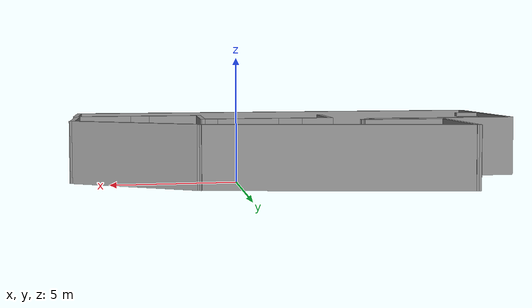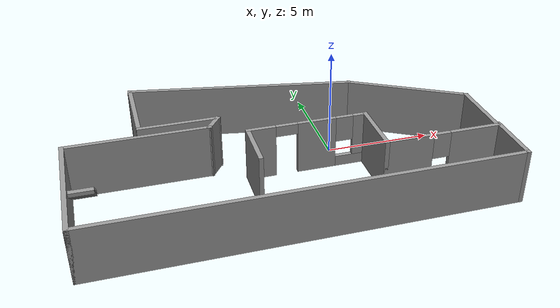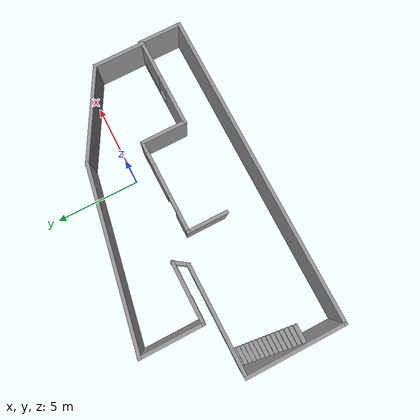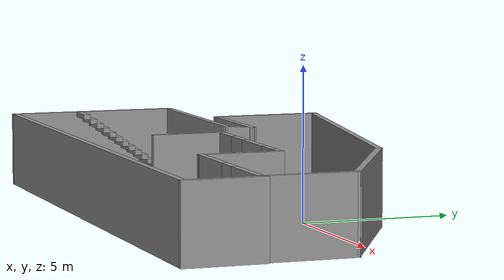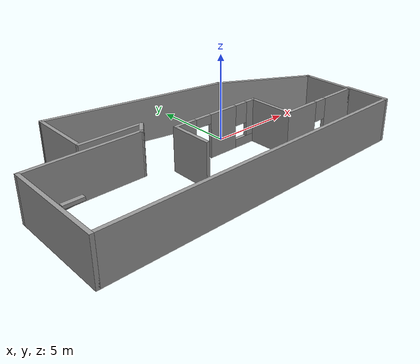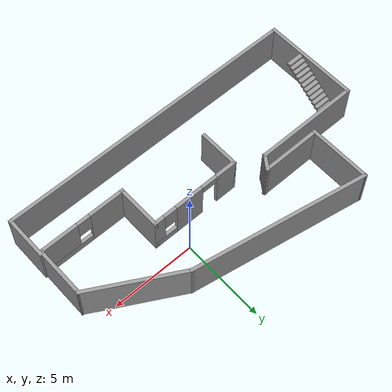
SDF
<?xml version='1.0'?>
<sdf version='1.4'>
  <model name='stupid_wall_ready_to_delete'>
    <link name='Stairs_0'>
      <visual name='Stairs_0_Visual_0'>
        <pose>-11.3254 -0.608508 0.083333 0 -0 0</pose>
        <geometry>
          <box>
            <size>1 0.233335 0.166668</size>
          </box>
        </geometry>
        <material>
          <script>
            <uri>file://media/materials/scripts/gazebo.material</uri>
            <name>Gazebo/Grey</name>
          </script>
        </material>
      </visual>
      <collision name='Stairs_0_Collision_0'>
        <geometry>
          <box>
            <size>1 0.233335 0.166668</size>
          </box>
        </geometry>
        <pose>-11.3254 -0.608508 0.083333 0 -0 0</pose>
      </collision>
      <visual name='Stairs_0_Visual_1'>
        <pose>-11.3254 -0.841841 0.25 0 -0 0</pose>
        <geometry>
          <box>
            <size>1 0.233335 0.166668</size>
          </box>
        </geometry>
        <material>
          <script>
            <uri>file://media/materials/scripts/gazebo.material</uri>
            <name>Gazebo/Grey</name>
          </script>
        </material>
      </visual>
      <collision name='Stairs_0_Collision_1'>
        <geometry>
          <box>
            <size>1 0.233335 0.166668</size>
          </box>
        </geometry>
        <pose>-11.3254 -0.841841 0.25 0 -0 0</pose>
      </collision>
      <visual name='Stairs_0_Visual_2'>
        <pose>-11.3254 -1.07517 0.416667 0 -0 0</pose>
        <geometry>
          <box>
            <size>1 0.233335 0.166668</size>
          </box>
        </geometry>
        <material>
          <script>
            <uri>file://media/materials/scripts/gazebo.material</uri>
            <name>Gazebo/Grey</name>
          </script>
        </material>
      </visual>
      <collision name='Stairs_0_Collision_2'>
        <geometry>
          <box>
            <size>1 0.233335 0.166668</size>
          </box>
        </geometry>
        <pose>-11.3254 -1.07517 0.416667 0 -0 0</pose>
      </collision>
      <visual name='Stairs_0_Visual_3'>
        <pose>-11.3254 -1.30851 0.583333 0 -0 0</pose>
        <geometry>
          <box>
            <size>1 0.233335 0.166668</size>
          </box>
        </geometry>
        <material>
          <script>
            <uri>file://media/materials/scripts/gazebo.material</uri>
            <name>Gazebo/Grey</name>
          </script>
        </material>
      </visual>
      <collision name='Stairs_0_Collision_3'>
        <geometry>
          <box>
            <size>1 0.233335 0.166668</size>
          </box>
        </geometry>
        <pose>-11.3254 -1.30851 0.583333 0 -0 0</pose>
      </collision>
      <visual name='Stairs_0_Visual_4'>
        <pose>-11.3254 -1.54184 0.75 0 -0 0</pose>
        <geometry>
          <box>
            <size>1 0.233335 0.166668</size>
          </box>
        </geometry>
        <material>
          <script>
            <uri>file://media/materials/scripts/gazebo.material</uri>
            <name>Gazebo/Grey</name>
          </script>
        </material>
      </visual>
      <collision name='Stairs_0_Collision_4'>
        <geometry>
          <box>
            <size>1 0.233335 0.166668</size>
          </box>
        </geometry>
        <pose>-11.3254 -1.54184 0.75 0 -0 0</pose>
      </collision>
      <visual name='Stairs_0_Visual_5'>
        <pose>-11.3254 -1.77517 0.916667 0 -0 0</pose>
        <geometry>
          <box>
            <size>1 0.233335 0.166668</size>
          </box>
        </geometry>
        <material>
          <script>
            <uri>file://media/materials/scripts/gazebo.material</uri>
            <name>Gazebo/Grey</name>
          </script>
        </material>
      </visual>
      <collision name='Stairs_0_Collision_5'>
        <geometry>
          <box>
            <size>1 0.233335 0.166668</size>
          </box>
        </geometry>
        <pose>-11.3254 -1.77517 0.916667 0 -0 0</pose>
      </collision>
      <visual name='Stairs_0_Visual_6'>
        <pose>-11.3254 -2.00851 1.08333 0 -0 0</pose>
        <geometry>
          <box>
            <size>1 0.233335 0.166668</size>
          </box>
        </geometry>
        <material>
          <script>
            <uri>file://media/materials/scripts/gazebo.material</uri>
            <name>Gazebo/Grey</name>
          </script>
        </material>
      </visual>
      <collision name='Stairs_0_Collision_6'>
        <geometry>
          <box>
            <size>1 0.233335 0.166668</size>
          </box>
        </geometry>
        <pose>-11.3254 -2.00851 1.08333 0 -0 0</pose>
      </collision>
      <visual name='Stairs_0_Visual_7'>
        <pose>-11.3254 -2.24184 1.25 0 -0 0</pose>
        <geometry>
          <box>
            <size>1 0.233335 0.166668</size>
          </box>
        </geometry>
        <material>
          <script>
            <uri>file://media/materials/scripts/gazebo.material</uri>
            <name>Gazebo/Grey</name>
          </script>
        </material>
      </visual>
      <collision name='Stairs_0_Collision_7'>
        <geometry>
          <box>
            <size>1 0.233335 0.166668</size>
          </box>
        </geometry>
        <pose>-11.3254 -2.24184 1.25 0 -0 0</pose>
      </collision>
      <visual name='Stairs_0_Visual_8'>
        <pose>-11.3254 -2.47517 1.41667 0 -0 0</pose>
        <geometry>
          <box>
            <size>1 0.233335 0.166668</size>
          </box>
        </geometry>
        <material>
          <script>
            <uri>file://media/materials/scripts/gazebo.material</uri>
            <name>Gazebo/Grey</name>
          </script>
        </material>
      </visual>
      <collision name='Stairs_0_Collision_8'>
        <geometry>
          <box>
            <size>1 0.233335 0.166668</size>
          </box>
        </geometry>
        <pose>-11.3254 -2.47517 1.41667 0 -0 0</pose>
      </collision>
      <visual name='Stairs_0_Visual_9'>
        <pose>-11.3254 -2.70851 1.58333 0 -0 0</pose>
        <geometry>
          <box>
            <size>1 0.233335 0.166668</size>
          </box>
        </geometry>
        <material>
          <script>
            <uri>file://media/materials/scripts/gazebo.material</uri>
            <name>Gazebo/Grey</name>
          </script>
        </material>
      </visual>
      <collision name='Stairs_0_Collision_9'>
        <geometry>
          <box>
            <size>1 0.233335 0.166668</size>
          </box>
        </geometry>
        <pose>-11.3254 -2.70851 1.58333 0 -0 0</pose>
      </collision>
      <visual name='Stairs_0_Visual_10'>
        <pose>-11.3254 -2.94184 1.75 0 -0 0</pose>
        <geometry>
          <box>
            <size>1 0.233335 0.166668</size>
          </box>
        </geometry>
        <material>
          <script>
            <uri>file://media/materials/scripts/gazebo.material</uri>
            <name>Gazebo/Grey</name>
          </script>
        </material>
      </visual>
      <collision name='Stairs_0_Collision_10'>
        <geometry>
          <box>
            <size>1 0.233335 0.166668</size>
          </box>
        </geometry>
        <pose>-11.3254 -2.94184 1.75 0 -0 0</pose>
      </collision>
      <visual name='Stairs_0_Visual_11'>
        <pose>-11.3254 -3.17517 1.91667 0 -0 0</pose>
        <geometry>
          <box>
            <size>1 0.233335 0.166668</size>
          </box>
        </geometry>
        <material>
          <script>
            <uri>file://media/materials/scripts/gazebo.material</uri>
            <name>Gazebo/Grey</name>
          </script>
        </material>
      </visual>
      <collision name='Stairs_0_Collision_11'>
        <geometry>
          <box>
            <size>1 0.233335 0.166668</size>
          </box>
        </geometry>
        <pose>-11.3254 -3.17517 1.91667 0 -0 0</pose>
      </collision>
      <visual name='Stairs_0_Visual_12'>
        <pose>-11.3254 -3.40851 2.08333 0 -0 0</pose>
        <geometry>
          <box>
            <size>1 0.233335 0.166668</size>
          </box>
        </geometry>
        <material>
          <script>
            <uri>file://media/materials/scripts/gazebo.material</uri>
            <name>Gazebo/Grey</name>
          </script>
        </material>
      </visual>
      <collision name='Stairs_0_Collision_12'>
        <geometry>
          <box>
            <size>1 0.233335 0.166668</size>
          </box>
        </geometry>
        <pose>-11.3254 -3.40851 2.08333 0 -0 0</pose>
      </collision>
      <visual name='Stairs_0_Visual_13'>
        <pose>-11.3254 -3.64184 2.25 0 -0 0</pose>
        <geometry>
          <box>
            <size>1 0.233335 0.166668</size>
          </box>
        </geometry>
        <material>
          <script>
            <uri>file://media/materials/scripts/gazebo.material</uri>
            <name>Gazebo/Grey</name>
          </script>
        </material>
      </visual>
      <collision name='Stairs_0_Collision_13'>
        <geometry>
          <box>
            <size>1 0.233335 0.166668</size>
          </box>
        </geometry>
        <pose>-11.3254 -3.64184 2.25 0 -0 0</pose>
      </collision>
      <visual name='Stairs_0_Visual_14'>
        <pose>-11.3254 -3.87517 2.41667 0 -0 0</pose>
        <geometry>
          <box>
            <size>1 0.233335 0.166668</size>
          </box>
        </geometry>
        <material>
          <script>
            <uri>file://media/materials/scripts/gazebo.material</uri>
            <name>Gazebo/Grey</name>
          </script>
        </material>
      </visual>
      <collision name='Stairs_0_Collision_14'>
        <geometry>
          <box>
            <size>1 0.233335 0.166668</size>
          </box>
        </geometry>
        <pose>-11.3254 -3.87517 2.41667 0 -0 0</pose>
      </collision>
    </link>
    <link name='Wall_0'>
      <collision name='Wall_0_Collision'>
        <geometry>
          <box>
            <size>2.47 0.2 2.5</size>
          </box>
        </geometry>
        <pose>0 0 1.25 0 -0 0</pose>
      </collision>
      <visual name='Wall_0_Visual'>
        <pose>0 0 1.25 0 -0 0</pose>
        <geometry>
          <box>
            <size>2.47 0.2 2.5</size>
          </box>
        </geometry>
        <material>
          <script>
            <uri>file://media/materials/scripts/gazebo.material</uri>
            <name>Gazebo/Grey</name>
          </script>
        </material>
      </visual>
      <velocity_decay>
        <linear>0</linear>
        <angular>0</angular>
      </velocity_decay>
      <pose>-4.17 -2.375 0 0 -0 1.5708</pose>
    </link>
    <link name='Wall_1'>
      <pose>-1.46 -1.24 0 0 -0 0</pose>
      <visual name='Wall_1_Visual_0'>
        <pose>-2.13758 0 1.25 0 -0 0</pose>
        <geometry>
          <box>
            <size>1.34484 0.2 2.5</size>
          </box>
        </geometry>
        <material>
          <script>
            <uri>file://media/materials/scripts/gazebo.material</uri>
            <name>Gazebo/Grey</name>
          </script>
        </material>
      </visual>
      <collision name='Wall_1_Collision_0'>
        <geometry>
          <box>
            <size>1.34484 0.2 2.5</size>
          </box>
        </geometry>
        <pose>-2.13758 0 1.25 0 -0 0</pose>
      </collision>
      <visual name='Wall_1_Visual_1'>
        <pose>0.421628 0 1.25 0 -0 0</pose>
        <geometry>
          <box>
            <size>1.77359 0.2 2.5</size>
          </box>
        </geometry>
        <material>
          <script>
            <uri>file://media/materials/scripts/gazebo.material</uri>
            <name>Gazebo/Grey</name>
          </script>
        </material>
      </visual>
      <collision name='Wall_1_Collision_1'>
        <geometry>
          <box>
            <size>1.77359 0.2 2.5</size>
          </box>
        </geometry>
        <pose>0.421628 0 1.25 0 -0 0</pose>
      </collision>
      <visual name='Wall_1_Visual_2'>
        <pose>2.05921 0 0.25 0 -0 0</pose>
        <geometry>
          <box>
            <size>1.50158 0.2 0.5</size>
          </box>
        </geometry>
        <material>
          <script>
            <uri>file://media/materials/scripts/gazebo.material</uri>
            <name>Gazebo/Grey</name>
          </script>
        </material>
      </visual>
      <collision name='Wall_1_Collision_2'>
        <geometry>
          <box>
            <size>1.50158 0.2 0.5</size>
          </box>
        </geometry>
        <pose>2.05921 0 0.25 0 -0 0</pose>
      </collision>
      <visual name='Wall_1_Visual_3'>
        <pose>2.45921 0 1.5 0 -0 0</pose>
        <geometry>
          <box>
            <size>0.701579 0.2 2</size>
          </box>
        </geometry>
        <material>
          <script>
            <uri>file://media/materials/scripts/gazebo.material</uri>
            <name>Gazebo/Grey</name>
          </script>
        </material>
      </visual>
      <collision name='Wall_1_Collision_3'>
        <geometry>
          <box>
            <size>0.701579 0.2 2</size>
          </box>
        </geometry>
        <pose>2.45921 0 1.5 0 -0 0</pose>
      </collision>
      <visual name='Wall_1_Visual_4'>
        <pose>1.70842 0 1.9 0 -0 0</pose>
        <geometry>
          <box>
            <size>0.8 0.2 1.2</size>
          </box>
        </geometry>
        <material>
          <script>
            <uri>file://media/materials/scripts/gazebo.material</uri>
            <name>Gazebo/Grey</name>
          </script>
        </material>
      </visual>
      <collision name='Wall_1_Collision_4'>
        <geometry>
          <box>
            <size>0.8 0.2 1.2</size>
          </box>
        </geometry>
        <pose>1.70842 0 1.9 0 -0 0</pose>
      </collision>
      <visual name='Wall_1_Visual_5'>
        <pose>-0.965165 0 2.25 0 -0 0</pose>
        <geometry>
          <box>
            <size>1 0.2 0.5</size>
          </box>
        </geometry>
        <material>
          <script>
            <uri>file://media/materials/scripts/gazebo.material</uri>
            <name>Gazebo/Grey</name>
          </script>
        </material>
      </visual>
      <collision name='Wall_1_Collision_5'>
        <geometry>
          <box>
            <size>1 0.2 0.5</size>
          </box>
        </geometry>
        <pose>-0.965165 0 2.25 0 -0 0</pose>
      </collision>
    </link>
    <link name='Wall_10'>
      <collision name='Wall_10_Collision'>
        <geometry>
          <box>
            <size>6.46182 0.2 2.5</size>
          </box>
        </geometry>
        <pose>0 0 1.25 0 -0 0</pose>
      </collision>
      <visual name='Wall_10_Visual'>
        <pose>0 0 1.25 0 -0 0</pose>
        <geometry>
          <box>
            <size>6.46182 0.2 2.5</size>
          </box>
        </geometry>
        <material>
          <script>
            <uri>file://media/materials/scripts/gazebo.material</uri>
            <name>Gazebo/Grey</name>
          </script>
        </material>
      </visual>
      <velocity_decay>
        <linear>0</linear>
        <angular>0</angular>
      </velocity_decay>
      <pose>-8.8277 -0.482903 0 0 -0 3.14159</pose>
    </link>
    <link name='Wall_11'>
      <collision name='Wall_11_Collision'>
        <geometry>
          <box>
            <size>5.89896 0.2 2.5</size>
          </box>
        </geometry>
        <pose>0 0 1.25 0 -0 0</pose>
      </collision>
      <visual name='Wall_11_Visual'>
        <pose>0 0 1.25 0 -0 0</pose>
        <geometry>
          <box>
            <size>5.89896 0.2 2.5</size>
          </box>
        </geometry>
        <material>
          <script>
            <uri>file://media/materials/scripts/gazebo.material</uri>
            <name>Gazebo/Grey</name>
          </script>
        </material>
      </visual>
      <velocity_decay>
        <linear>0</linear>
        <angular>0</angular>
      </velocity_decay>
      <pose>-11.9586 -3.33238 0 0 0 -1.5708</pose>
    </link>
    <link name='Wall_12'>
      <collision name='Wall_12_Collision'>
        <geometry>
          <box>
            <size>18.704 0.2 2.5</size>
          </box>
        </geometry>
        <pose>0 0 1.25 0 -0 0</pose>
      </collision>
      <visual name='Wall_12_Visual'>
        <pose>0 0 1.25 0 -0 0</pose>
        <geometry>
          <box>
            <size>18.704 0.2 2.5</size>
          </box>
        </geometry>
        <material>
          <script>
            <uri>file://media/materials/scripts/gazebo.material</uri>
            <name>Gazebo/Grey</name>
          </script>
        </material>
      </visual>
      <velocity_decay>
        <linear>0</linear>
        <angular>0</angular>
      </velocity_decay>
      <pose>-2.7066 -6.18186 0 0 -0 0</pose>
    </link>
    <link name='Wall_13'>
      <collision name='Wall_13_Collision'>
        <geometry>
          <box>
            <size>2.66251 0.2 2.5</size>
          </box>
        </geometry>
        <pose>0 0 1.25 0 -0 0</pose>
      </collision>
      <visual name='Wall_13_Visual'>
        <pose>0 0 1.25 0 -0 0</pose>
        <geometry>
          <box>
            <size>2.66251 0.2 2.5</size>
          </box>
        </geometry>
        <material>
          <script>
            <uri>file://media/materials/scripts/gazebo.material</uri>
            <name>Gazebo/Grey</name>
          </script>
        </material>
      </visual>
      <velocity_decay>
        <linear>0</linear>
        <angular>0</angular>
      </velocity_decay>
      <pose>6.54542 -4.95061 0 0 -0 1.5708</pose>
    </link>
    <link name='Wall_2'>
      <collision name='Wall_2_Collision'>
        <geometry>
          <box>
            <size>2.77 0.2 2.5</size>
          </box>
        </geometry>
        <pose>0 0 1.25 0 -0 0</pose>
      </collision>
      <visual name='Wall_2_Visual'>
        <pose>0 0 1.25 0 -0 0</pose>
        <geometry>
          <box>
            <size>2.77 0.2 2.5</size>
          </box>
        </geometry>
        <material>
          <script>
            <uri>file://media/materials/scripts/gazebo.material</uri>
            <name>Gazebo/Grey</name>
          </script>
        </material>
      </visual>
      <velocity_decay>
        <linear>0</linear>
        <angular>0</angular>
      </velocity_decay>
      <pose>1.25 -2.525 0 0 0 -1.5708</pose>
    </link>
    <link name='Wall_3'>
      <pose>3.85 -3.81 0 0 -0 0</pose>
      <visual name='Wall_3_Visual_0'>
        <pose>-1.57426 0 1.25 0 -0 0</pose>
        <geometry>
          <box>
            <size>2.25148 0.2 2.5</size>
          </box>
        </geometry>
        <material>
          <script>
            <uri>file://media/materials/scripts/gazebo.material</uri>
            <name>Gazebo/Grey</name>
          </script>
        </material>
      </visual>
      <collision name='Wall_3_Collision_0'>
        <geometry>
          <box>
            <size>2.25148 0.2 2.5</size>
          </box>
        </geometry>
        <pose>-1.57426 0 1.25 0 -0 0</pose>
      </collision>
      <visual name='Wall_3_Visual_1'>
        <pose>1.12574 0 0.25 0 -0 0</pose>
        <geometry>
          <box>
            <size>3.14852 0.2 0.5</size>
          </box>
        </geometry>
        <material>
          <script>
            <uri>file://media/materials/scripts/gazebo.material</uri>
            <name>Gazebo/Grey</name>
          </script>
        </material>
      </visual>
      <collision name='Wall_3_Collision_1'>
        <geometry>
          <box>
            <size>3.14852 0.2 0.5</size>
          </box>
        </geometry>
        <pose>1.12574 0 0.25 0 -0 0</pose>
      </collision>
      <visual name='Wall_3_Visual_2'>
        <pose>1.52574 0 1.5 0 -0 0</pose>
        <geometry>
          <box>
            <size>2.34852 0.2 2</size>
          </box>
        </geometry>
        <material>
          <script>
            <uri>file://media/materials/scripts/gazebo.material</uri>
            <name>Gazebo/Grey</name>
          </script>
        </material>
      </visual>
      <collision name='Wall_3_Collision_2'>
        <geometry>
          <box>
            <size>2.34852 0.2 2</size>
          </box>
        </geometry>
        <pose>1.52574 0 1.5 0 -0 0</pose>
      </collision>
      <visual name='Wall_3_Visual_3'>
        <pose>-0.048524 0 1.9 0 -0 0</pose>
        <geometry>
          <box>
            <size>0.8 0.2 1.2</size>
          </box>
        </geometry>
        <material>
          <script>
            <uri>file://media/materials/scripts/gazebo.material</uri>
            <name>Gazebo/Grey</name>
          </script>
        </material>
      </visual>
      <collision name='Wall_3_Collision_3'>
        <geometry>
          <box>
            <size>0.8 0.2 1.2</size>
          </box>
        </geometry>
        <pose>-0.048524 0 1.9 0 -0 0</pose>
      </collision>
    </link>
    <link name='Wall_4'>
      <collision name='Wall_4_Collision'>
        <geometry>
          <box>
            <size>3.15 0.2 2.5</size>
          </box>
        </geometry>
        <pose>0 0 1.25 0 -0 0</pose>
      </collision>
      <visual name='Wall_4_Visual'>
        <pose>0 0 1.25 0 -0 0</pose>
        <geometry>
          <box>
            <size>3.15 0.2 2.5</size>
          </box>
        </geometry>
        <material>
          <script>
            <uri>file://media/materials/scripts/gazebo.material</uri>
            <name>Gazebo/Grey</name>
          </script>
        </material>
      </visual>
      <velocity_decay>
        <linear>0</linear>
        <angular>0</angular>
      </velocity_decay>
      <pose>6.45 -2.335 0 0 -0 1.5708</pose>
    </link>
    <link name='Wall_5'>
      <collision name='Wall_5_Collision'>
        <geometry>
          <box>
            <size>5.79776 0.2 2.5</size>
          </box>
        </geometry>
        <pose>0 0 1.25 0 -0 0</pose>
      </collision>
      <visual name='Wall_5_Visual'>
        <pose>0 0 1.25 0 -0 0</pose>
        <geometry>
          <box>
            <size>5.79776 0.2 2.5</size>
          </box>
        </geometry>
        <material>
          <script>
            <uri>file://media/materials/scripts/gazebo.material</uri>
            <name>Gazebo/Grey</name>
          </script>
        </material>
      </visual>
      <velocity_decay>
        <linear>0</linear>
        <angular>0</angular>
      </velocity_decay>
      <pose>4.01761 0.524627 0 0 -0 2.62409</pose>
    </link>
    <link name='Wall_6'>
      <collision name='Wall_6_Collision'>
        <geometry>
          <box>
            <size>10.6528 0.2 2.5</size>
          </box>
        </geometry>
        <pose>0 0 1.25 0 -0 0</pose>
      </collision>
      <visual name='Wall_6_Visual'>
        <pose>0 0 1.25 0 -0 0</pose>
        <geometry>
          <box>
            <size>10.6528 0.2 2.5</size>
          </box>
        </geometry>
        <material>
          <script>
            <uri>file://media/materials/scripts/gazebo.material</uri>
            <name>Gazebo/Grey</name>
          </script>
        </material>
      </visual>
      <velocity_decay>
        <linear>0</linear>
        <angular>0</angular>
      </velocity_decay>
      <pose>-3.55089 2.87667 0 0 -0 2.95542</pose>
    </link>
    <link name='Wall_7'>
      <collision name='Wall_7_Collision'>
        <geometry>
          <box>
            <size>3.82341 0.2 2.5</size>
          </box>
        </geometry>
        <pose>0 0 1.25 0 -0 0</pose>
      </collision>
      <visual name='Wall_7_Visual'>
        <pose>0 0 1.25 0 -0 0</pose>
        <geometry>
          <box>
            <size>3.82341 0.2 2.5</size>
          </box>
        </geometry>
        <material>
          <script>
            <uri>file://media/materials/scripts/gazebo.material</uri>
            <name>Gazebo/Grey</name>
          </script>
        </material>
      </visual>
      <velocity_decay>
        <linear>0</linear>
        <angular>0</angular>
      </velocity_decay>
      <pose>-8.68698 2.03238 0 0 0 -1.5708</pose>
    </link>
    <link name='Wall_8'>
      <collision name='Wall_8_Collision'>
        <geometry>
          <box>
            <size>3.6827 0.2 2.5</size>
          </box>
        </geometry>
        <pose>0 0 1.25 0 -0 0</pose>
      </collision>
      <visual name='Wall_8_Visual'>
        <pose>0 0 1.25 0 -0 0</pose>
        <geometry>
          <box>
            <size>3.6827 0.2 2.5</size>
          </box>
        </geometry>
        <material>
          <script>
            <uri>file://media/materials/scripts/gazebo.material</uri>
            <name>Gazebo/Grey</name>
          </script>
        </material>
      </visual>
      <velocity_decay>
        <linear>0</linear>
        <angular>0</angular>
      </velocity_decay>
      <pose>-6.94564 0.220673 0 0 -0 0</pose>
    </link>
    <link name='Wall_9'>
      <collision name='Wall_9_Collision'>
        <geometry>
          <box>
            <size>1.05882 0.2 2.5</size>
          </box>
        </geometry>
        <pose>0 0 1.25 0 -0 0</pose>
      </collision>
      <visual name='Wall_9_Visual'>
        <pose>0 0 1.25 0 -0 0</pose>
        <geometry>
          <box>
            <size>1.05882 0.2 2.5</size>
          </box>
        </geometry>
        <material>
          <script>
            <uri>file://media/materials/scripts/gazebo.material</uri>
            <name>Gazebo/Grey</name>
          </script>
        </material>
      </visual>
      <velocity_decay>
        <linear>0</linear>
        <angular>0</angular>
      </velocity_decay>
      <pose>-5.45054 -0.131115 0 0 0 -2.18152</pose>
    </link>
    <static>1</static>
  </model>
</sdf>
